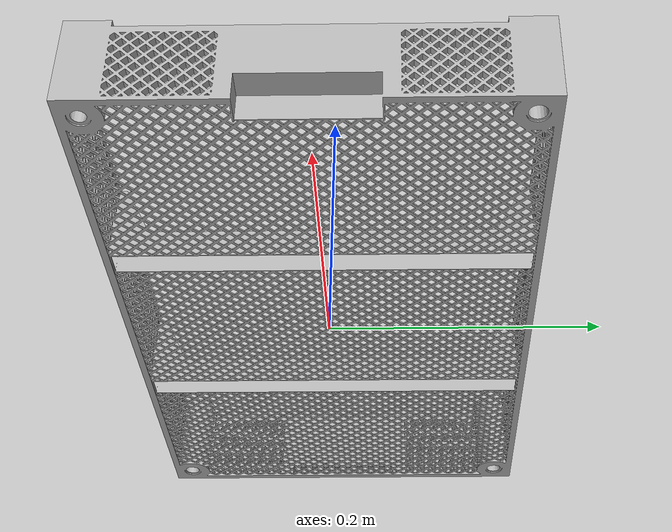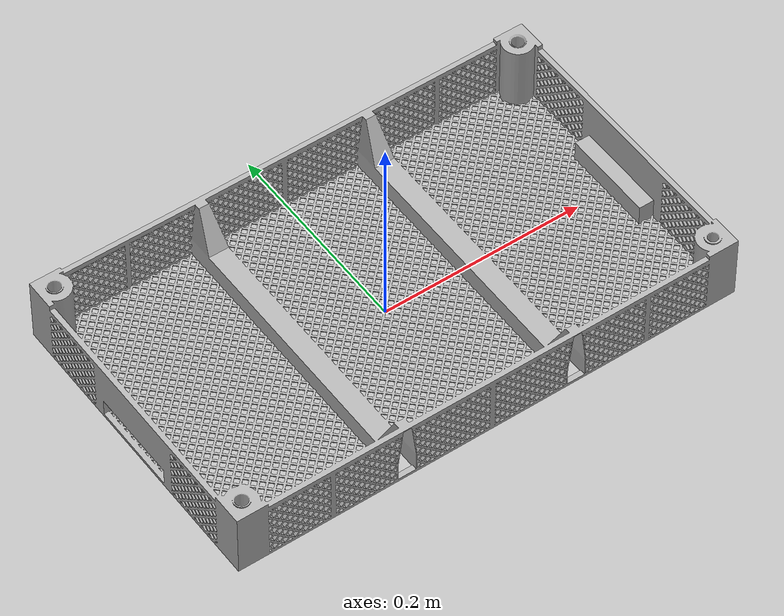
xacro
<?xml version="1.0" ?>
<robot name="bandeja" xmlns:xacro="http://www.ros.org/wiki/xacro">

<xacro:arg name="include_ros_extensions" default="true"/>
<xacro:arg name="mesh_directory" default="package://bandeja_description/meshes"/>
<xacro:property name="mesh_directory" value="$(arg mesh_directory)"/>

<xacro:include filename="materials.xacro" />
<xacro:if value="$(arg include_ros_extensions)">
  <xacro:include filename="bandeja.trans" />
  <xacro:include filename="bandeja.gazebo" />
</xacro:if>
<link name="base_link">
  <inertial>
    <origin xyz="-0.0003670224788962248 -0.00032310327888739027 0.026548007642999714" rpy="0 0 0"/>
    <mass value="0.5306530561152163"/>
    <inertia ixx="0.007973" iyy="0.020537" izz="0.02809" ixy="4.1e-05" iyz="1e-06" ixz="-1.3e-05"/>
  </inertial>
  <visual>
    <origin xyz="0 0 0" rpy="0 0 0"/>
    <geometry>
      <mesh filename="${mesh_directory}/base_link.stl" scale="0.001 0.001 0.001"/>
    </geometry>
    <material name="silver"/>
  </visual>
  <collision>
    <origin xyz="0 0 0" rpy="0 0 0"/>
    <geometry>
      <mesh filename="${mesh_directory}/base_link.stl" scale="0.001 0.001 0.001"/>
    </geometry>
  </collision>
</link>

</robot>

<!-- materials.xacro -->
<robot name="bandeja" xmlns:xacro="http://www.ros.org/wiki/xacro" >

<material name="silver">
  <color rgba="0.700 0.700 0.700 1.000"/>
</material>

</robot>

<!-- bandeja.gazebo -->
<robot name="bandeja" xmlns:xacro="http://www.ros.org/wiki/xacro" >

<xacro:property name="body_color" value="Gazebo/Silver" />

<gazebo>
  <plugin name="control" filename="libgazebo_ros_control.so"/>
</gazebo>
<gazebo reference="base_link">
  <material>${body_color}</material>
  <mu1>0.2</mu1>
  <mu2>0.2</mu2>
  <self_collide>true</self_collide>
  <gravity>true</gravity>
</gazebo>

</robot>
